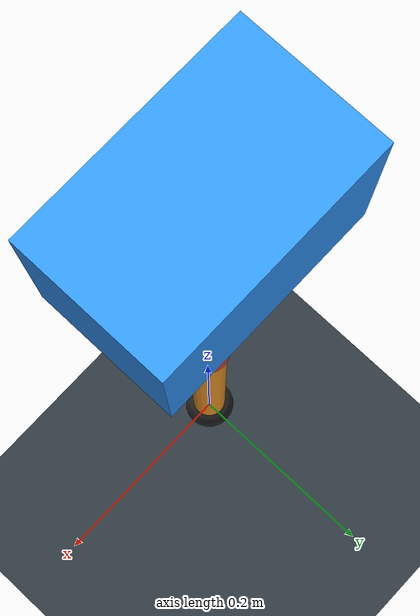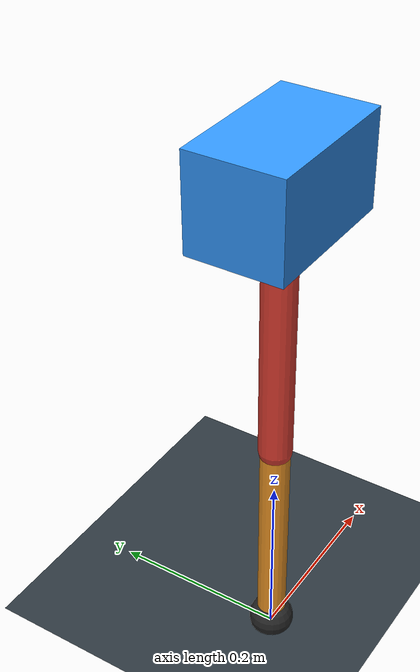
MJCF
<mujoco model="single_axis_two_bar">
  <compiler angle="radian" inertiafromgeom="true"/>
  <option timestep="0.001" integrator="implicitfast" gravity="0 0 -9.81"/>
  <default>
    <joint damping="0.08"/>
    <geom friction="1.2 0.01 0.0001" condim="3"/>
  </default>
  <worldbody>
    <geom name="floor" type="plane" size="5 5 0.1" rgba="0.18 0.22 0.25 1"/>
    <body name="carriage" pos="0 0 0.5597756188370957">
      <joint name="pole_slide" type="slide" axis="0 0 1"/>
      <geom name="payload" type="box" size="0.08 0.05 0.05" mass="3.742898959722568" rgba="0.2 0.6 1 1"/>
      <body name="thigh" pos="0 0 0">
        <joint name="hip" type="hinge" axis="0 1 0"/>
        <geom name="thigh_link" type="capsule" fromto="0 0 0 0 0 -0.303415122913933" size="0.018" mass="0.21618728435329462" rgba="0.9 0.25 0.2 1"/>
        <body name="shank" pos="0 0 -0.303415122913933">
          <joint name="knee" type="hinge" axis="0 1 0"/>
          <geom name="shank_link" type="capsule" fromto="0 0 0 0 0 -0.24789994805214502" size="0.016" mass="0.17663198869595642" rgba="0.95 0.6 0.15 1"/>
          <geom name="foot" type="sphere" pos="0 0 -0.24789994805214502" size="0.025" mass="0.03" rgba="0.15 0.15 0.15 1"/>
          <site name="toe" pos="0 0 -0.24789994805214502" size="0.008"/>
        </body>
      </body>
    </body>
  </worldbody>
  <actuator>
    <motor name="hip_motor" joint="hip" ctrlrange="-51.3968262413315 51.3968262413315"/>
    <motor name="knee_motor" joint="knee" ctrlrange="-146.46429680292135 146.46429680292135"/>
  </actuator>
</mujoco>
